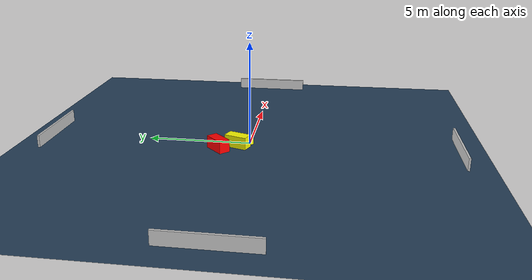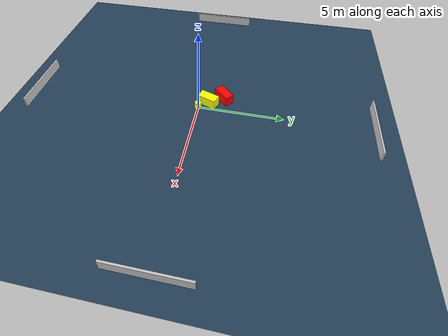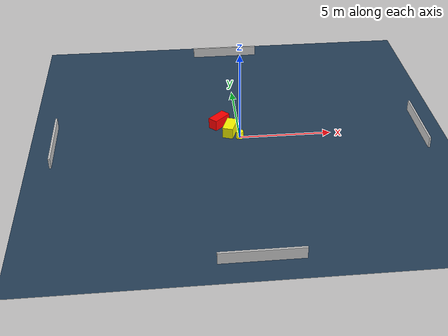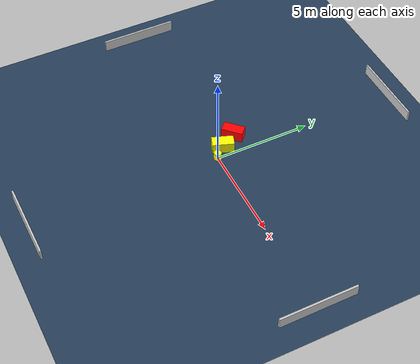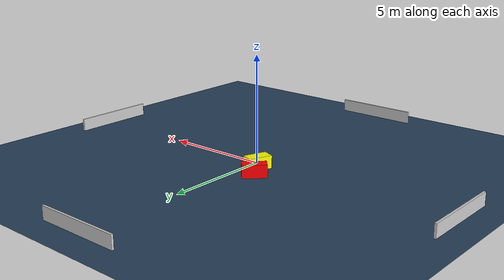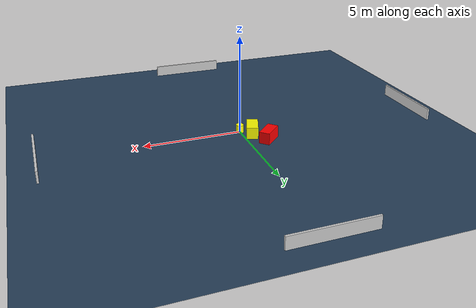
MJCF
<?xml version="1.0" ?>
<mujoco model="generated_environment">
  <option timestep="0.01" integrator="RK4" cone="elliptic"/>
  <default>
    <geom density="1"/>
  </default>
  <asset>
    <texture builtin="gradient" height="3072" name="skybox" rgb1="0.3 0.5 0.7" rgb2="0 0 0" type="skybox" width="512"/>
    <texture builtin="checker" height="300" name="groundplane" rgb1="0.2 0.3 0.4" rgb2="0.1 0.2 0.3" type="2d" width="300"/>
    <material name="groundplane" reflectance="0.2" texrepeat="5 5" texture="groundplane"/>
  </asset>
  <worldbody>
    <light dir="0 0 -1" directional="true" pos="0 0 1.5"/>
    <geom condim="3" friction="0.5 0.005 0.001" material="groundplane" name="floor" pos="0 0 0" size="0 0 0.05" type="plane"/>
    <body name="walls">
      <geom name="wall_1" condim="4" pos="-10.0 0.0 0.3" rgba="0.800000011920929 0.800000011920929 0.800000011920929 1.0" size="0.05 2.0 0.3" type="box"/>
      <geom name="wall_2" condim="4" pos="10.0 0.0 0.3" rgba="0.800000011920929 0.800000011920929 0.800000011920929 1.0" size="0.05 2.0 0.3" type="box"/>
      <geom name="wall_3" condim="4" pos="0.0 -10.0 0.3" rgba="0.800000011920929 0.800000011920929 0.800000011920929 1.0" size="2.0 0.05 0.3" type="box"/>
      <geom name="wall_4" condim="4" pos="0.0 10.0 0.3" rgba="0.800000011920929 0.800000011920929 0.800000011920929 1.0" size="2.0 0.05 0.3" type="box"/>
    </body>
    <body name="robot">
      <joint name="joint_x" type="slide" pos="0 0 0" axis="1 0 0"/>
      <joint name="joint_y" type="slide" pos="0 0 0" axis="0 1 0"/>
      <geom name="robot" type="cylinder" pos="0.0 0.0 0.2" size="0.2 0.2 0.0" mass="5.0" friction="1.0 0.005 0.0001" condim="4" rgba="1.0 1.0 0.0 1.0"/>
    </body>
    <body name="obstacle_1_movable">
      <geom name="obstacle_1_movable" condim="4" pos="-0.47644984938940965 0.5178954368667059 0.3" euler="0 0 70.1237492382629" friction="0.0 0.005 0.001" rgba="1.0 1.0 0.0 1.0" size="0.5618697921883551 0.28998943928642046 0.3" type="box" mass="0.1"/>
      <joint type="free"/>
    </body>
    <body name="obstacle_2_static">
      <geom name="obstacle_2_static" condim="4" pos="-1.0163462574883209 1.377192250787081 0.3" euler="0 0 224.1569595939034" friction="0.0 0.005 0.001" rgba="1.0 0.0 0.0 1.0" size="0.5567373059109131 0.2732759787425861 0.3" type="box"/>
    </body>
  </worldbody>
  <actuator>
    <motor name="actuator_x" joint="joint_x" gear="1" ctrlrange="-1 1"/>
    <motor name="actuator_y" joint="joint_y" gear="1" ctrlrange="-1 1"/>
  </actuator>
</mujoco>
